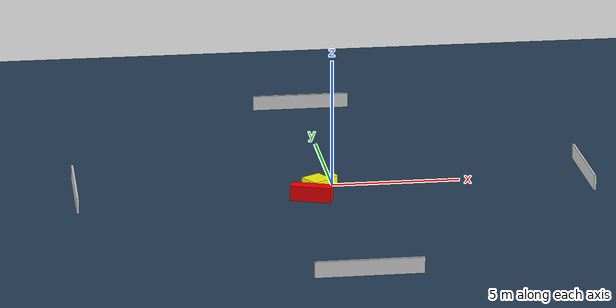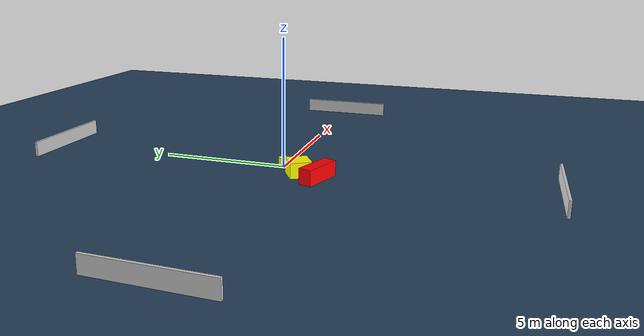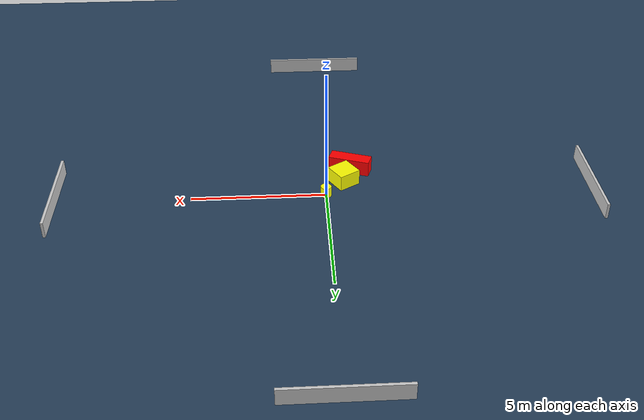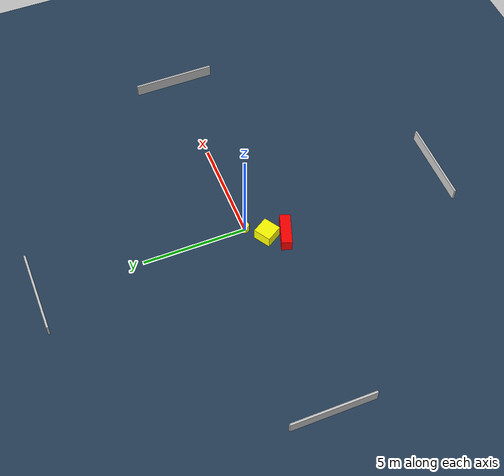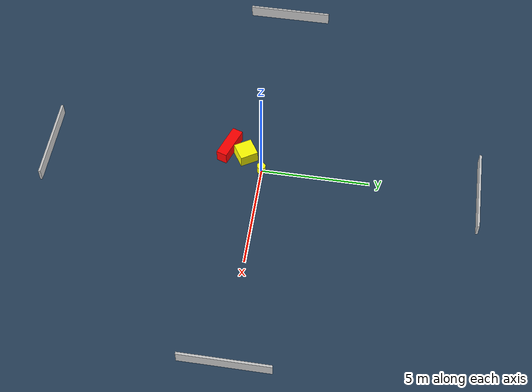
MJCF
<?xml version="1.0" ?>
<mujoco model="generated_environment">
  <option timestep="0.01" integrator="RK4" cone="elliptic"/>
  <default>
    <geom density="1"/>
  </default>
  <asset>
    <texture builtin="gradient" height="3072" name="skybox" rgb1="0.3 0.5 0.7" rgb2="0 0 0" type="skybox" width="512"/>
    <texture builtin="checker" height="300" name="groundplane" rgb1="0.2 0.3 0.4" rgb2="0.1 0.2 0.3" type="2d" width="300"/>
    <material name="groundplane" reflectance="0.2" texrepeat="5 5" texture="groundplane"/>
  </asset>
  <worldbody>
    <light dir="0 0 -1" directional="true" pos="0 0 1.5"/>
    <geom condim="3" friction="0.5 0.005 0.001" material="groundplane" name="floor" pos="0 0 0" size="0 0 0.05" type="plane"/>
    <body name="walls">
      <geom name="wall_1" condim="4" pos="-10.0 0.0 0.3" rgba="0.800000011920929 0.800000011920929 0.800000011920929 1.0" size="0.05 2.0 0.3" type="box"/>
      <geom name="wall_2" condim="4" pos="10.0 0.0 0.3" rgba="0.800000011920929 0.800000011920929 0.800000011920929 1.0" size="0.05 2.0 0.3" type="box"/>
      <geom name="wall_3" condim="4" pos="0.0 -10.0 0.3" rgba="0.800000011920929 0.800000011920929 0.800000011920929 1.0" size="2.0 0.05 0.3" type="box"/>
      <geom name="wall_4" condim="4" pos="0.0 10.0 0.3" rgba="0.800000011920929 0.800000011920929 0.800000011920929 1.0" size="2.0 0.05 0.3" type="box"/>
    </body>
    <body name="robot">
      <joint name="joint_x" type="slide" pos="0 0 0" axis="1 0 0"/>
      <joint name="joint_y" type="slide" pos="0 0 0" axis="0 1 0"/>
      <geom name="robot" type="cylinder" pos="0.0 0.0 0.2" size="0.2 0.2 0.0" mass="5.0" friction="1.0 0.005 0.0001" condim="4" rgba="1.0 1.0 0.0 1.0"/>
    </body>
    <body name="obstacle_1_movable">
      <geom name="obstacle_1_movable" condim="4" pos="-0.7130220435282181 -0.8350198262821048 0.3" euler="0 0 211.93365071735016" friction="0.0 0.005 0.001" rgba="1.0 1.0 0.0 1.0" size="0.4279092896311008 0.42386552701492525 0.3" type="box" mass="0.1"/>
      <joint type="free"/>
    </body>
    <body name="obstacle_2_static">
      <geom name="obstacle_2_static" condim="4" pos="-1.019530606538303 -1.6538945496306139 0.3" euler="0 0 160.6390731886268" friction="0.0 0.005 0.001" rgba="1.0 0.0 0.0 1.0" size="0.7883112557299483 0.2532284055783631 0.3" type="box"/>
    </body>
  </worldbody>
  <actuator>
    <motor name="actuator_x" joint="joint_x" gear="1" ctrlrange="-1 1"/>
    <motor name="actuator_y" joint="joint_y" gear="1" ctrlrange="-1 1"/>
  </actuator>
</mujoco>
